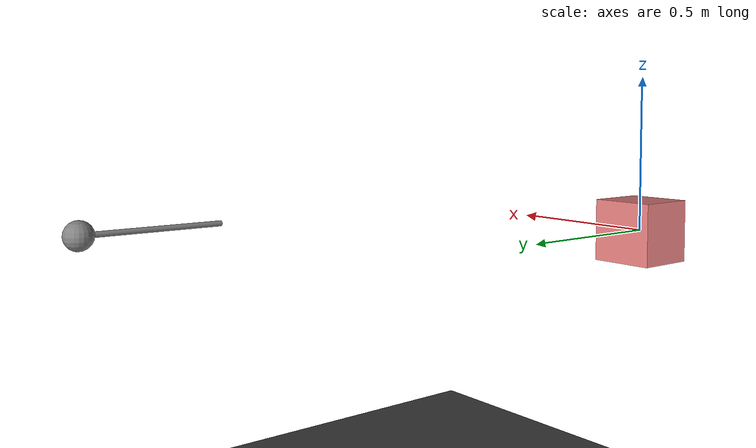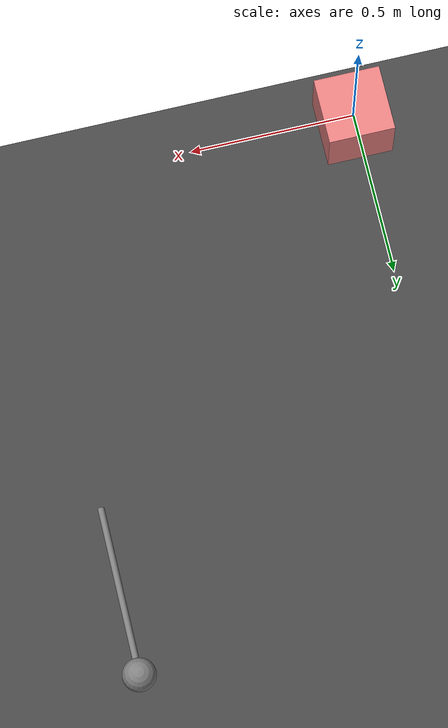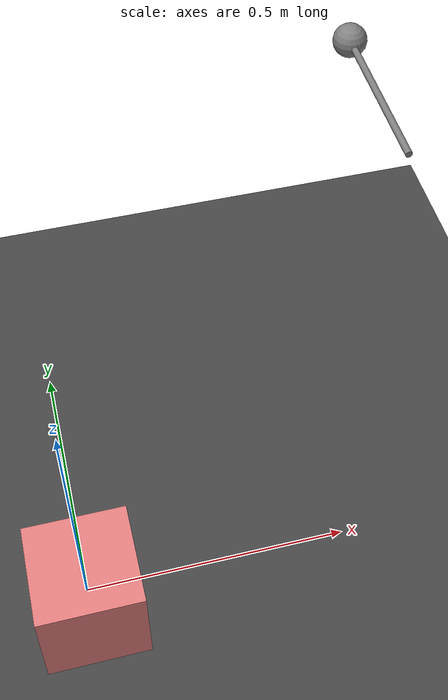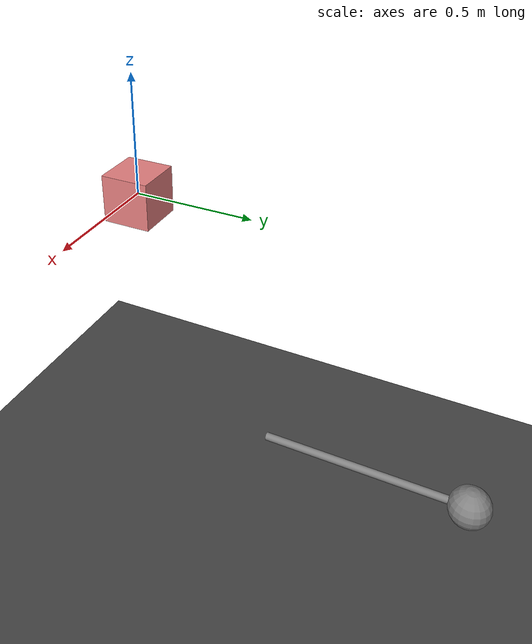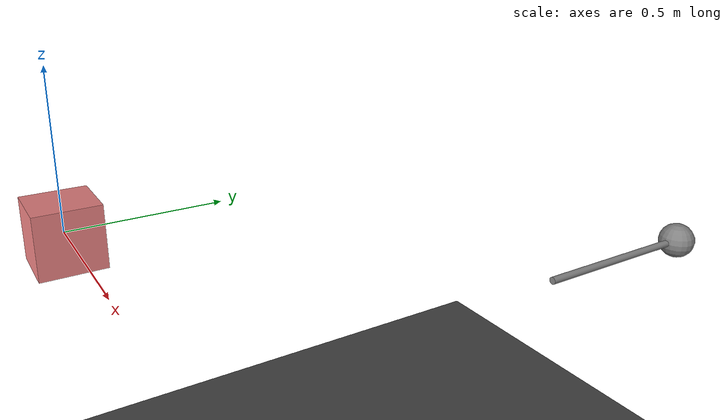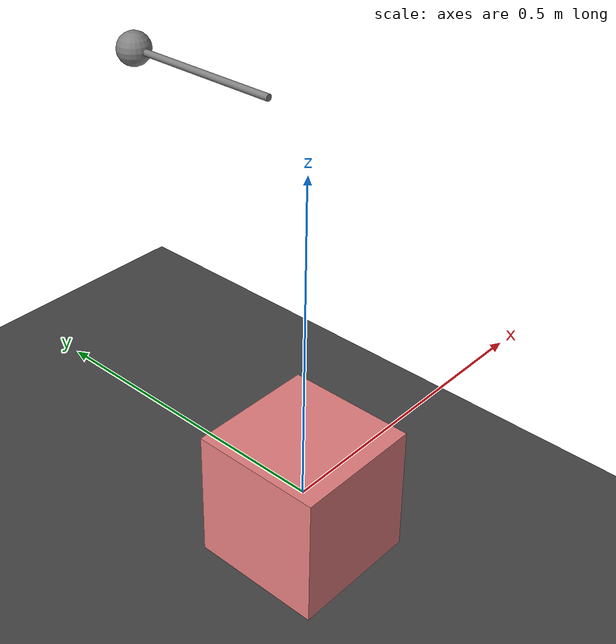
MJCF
<mujoco model="Falling cube">
    <!-- Model helping to debug acceleration computation via mjc api -->

    <asset>
        <texture type="skybox" builtin="gradient" rgb1=".6 .6 .9" rgb2="0 0 0" width="512" height="512"/>

        <texture name="texplane" type="2d" builtin="checker" rgb1=".25 .25 .25" rgb2=".3 .3 .3" width="512" height="512" mark="cross" markrgb=".8 .8 .8"/>
        <material name="matplane" reflectance=".3" texture="texplane" texrepeat="1 1" texuniform="true"/>
    </asset>

    <visual>
        <rgba haze=".35 .35 .5 1"/>
    </visual>

    <worldbody>
        <geom name="floor" pos=".0 .0 -1.0" size="0 0 1" type="plane" material="matplane"/>
        <light directional="true" diffuse=".8 .8 .8" specular=".2 .2 .2" pos=".0 .0 5.0" dir="0 0 -1"/>

        <body name="falling_cube">
            <geom name="cube" type="box" size="0.1 0.1 0.1" rgba="0.9 0.5 0.5 1"/>
        </body>

        <body name="pendulum">
            <geom name="weight" type="sphere" pos="1. 1.5 0" size=".05 .05 .05" mass="1"/>
            <geom name="pole" type="cylinder" fromto="1. 1. 0 1. 1.5 0" mass="0" size=".01"/>

            <joint name="pend_axis" type="hinge" pos="1. 1. 0." axis="1 0 0" ref="90"/>
        </body>

    </worldbody>

    <actuator>
        <motor name="pend_ctrl" joint="pend_axis" gear="1 0 0 0 0 0"/>
    </actuator>

</mujoco>
